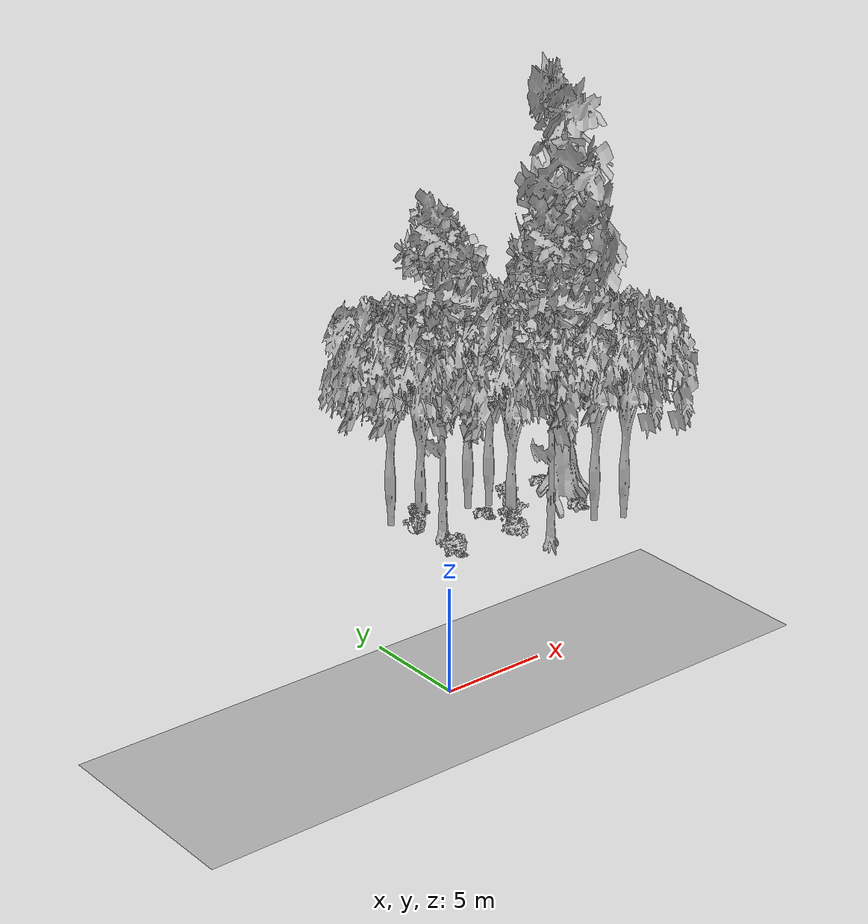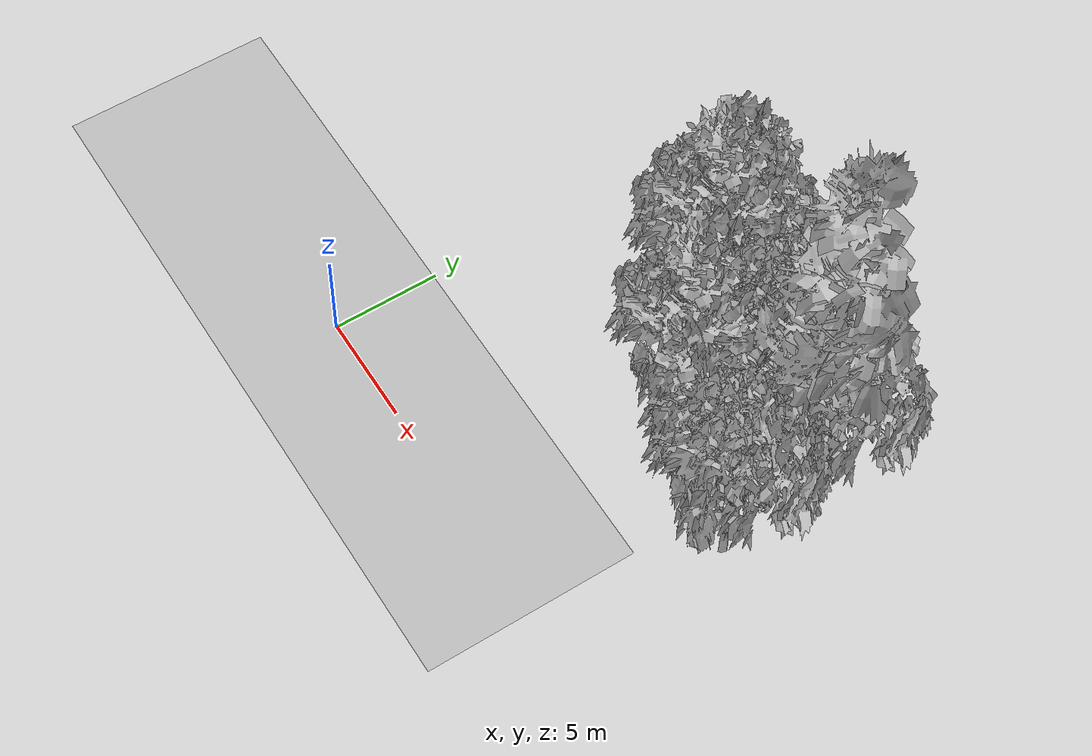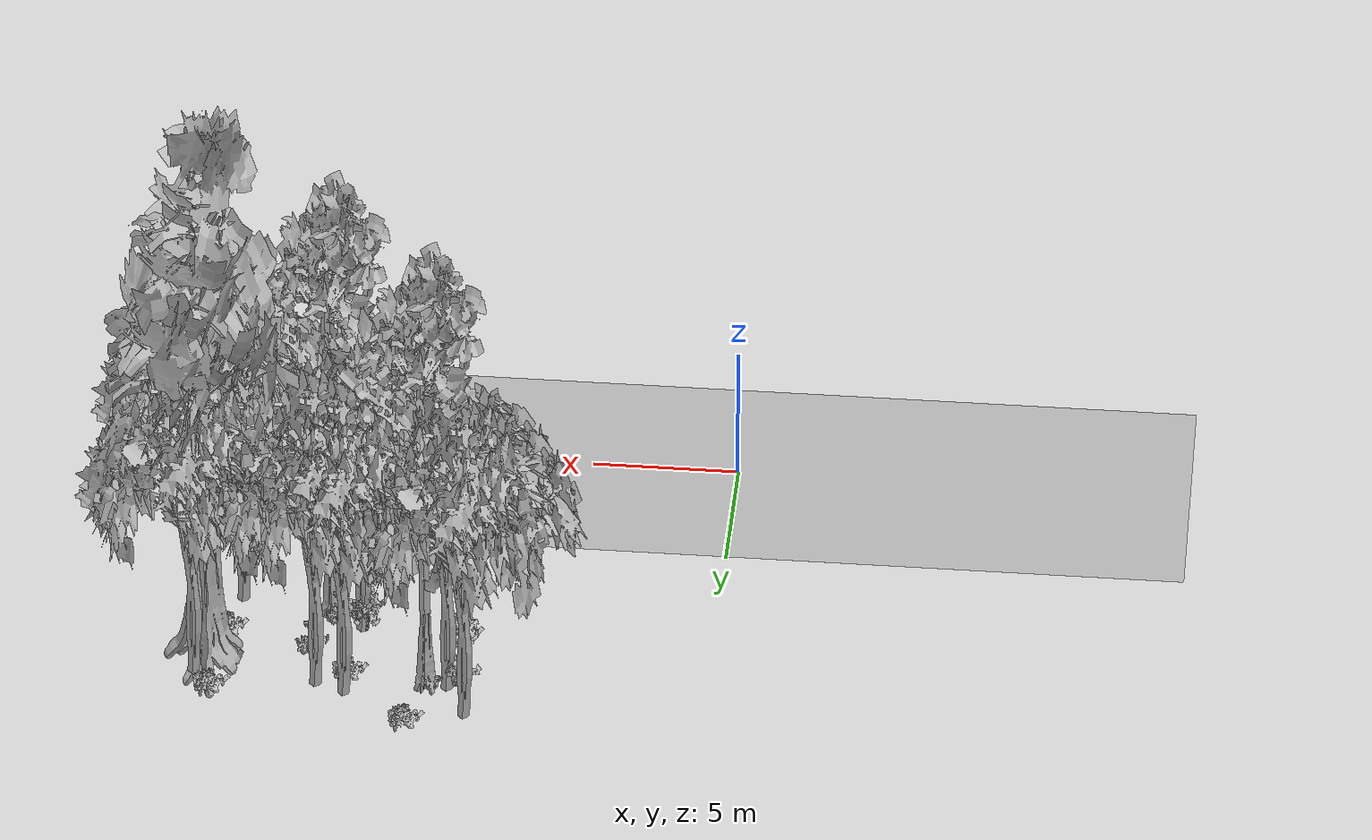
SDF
<sdf version="1.7">
 <world name="default">
  <model name="ground_plane">
   <static>1</static>
   <link name="link">
    <collision name="collision">
     <geometry><plane><normal>0 0 1</normal><size>100 100</size></plane></geometry>
     <surface><contact><ode><min_depth>0.01</min_depth><max_vel>0</max_vel></ode></contact></surface>
    </collision>
    <visual name="grass">
     <cast_shadows>0</cast_shadows>
     <geometry>
      <mesh>
       <scale>0.5814285714285714 0.18142857142857144 0.1</scale>
       <uri>file://grass_plane/meshes/grass_plane.dae</uri>
      </mesh>
     </geometry>
    </visual>
   </link>
  </model>
  <model name="Tree 53">
   <static>1</static>
   <pose>8.595025541905379 13.079518495832978 0 1.57079 -0 0</pose>
   <link name="link">
    <collision name="collision">
     <geometry><mesh><scale>3.5 5 3.5</scale><uri>model://tree_2/meshes/tree_2.obj</uri></mesh></geometry>
    </collision>
    <visual name="visual">
     <geometry><mesh><scale>3.5 5 3.5</scale><uri>model://tree_2/meshes/tree_2.obj</uri></mesh></geometry>
    </visual>
   </link>
  </model>
  <model name="Tree 113">
   <static>1</static>
   <pose>9.496349784259941 12.391039289966233 0 1.57079 -0 0</pose>
   <link name="link">
    <collision name="collision">
     <geometry><mesh><scale>3.5 5 3.5</scale><uri>model://tree_9/meshes/tree_9.obj</uri></mesh></geometry>
    </collision>
    <visual name="visual">
     <geometry><mesh><scale>3.5 5 3.5</scale><uri>model://tree_9/meshes/tree_9.obj</uri></mesh></geometry>
    </visual>
   </link>
  </model>
  <model name="Tree 144">
   <static>1</static>
   <pose>17.354970323330306 8.047245632181301 0 1.57079 -0 0</pose>
   <link name="link">
    <collision name="collision">
     <geometry><mesh><scale>3.5 5 3.5</scale><uri>model://tree_2/meshes/tree_2.obj</uri></mesh></geometry>
    </collision>
    <visual name="visual">
     <geometry><mesh><scale>3.5 5 3.5</scale><uri>model://tree_2/meshes/tree_2.obj</uri></mesh></geometry>
    </visual>
   </link>
  </model>
  <model name="Tree 198">
   <static>1</static>
   <pose>11.805888345264279 10.06929105194991 0 1.57079 -0 0</pose>
   <link name="link">
    <collision name="collision">
     <geometry><mesh><scale>3.5 5 3.5</scale><uri>model://tree_2/meshes/tree_2.obj</uri></mesh></geometry>
    </collision>
    <visual name="visual">
     <geometry><mesh><scale>3.5 5 3.5</scale><uri>model://tree_2/meshes/tree_2.obj</uri></mesh></geometry>
    </visual>
   </link>
  </model>
  <model name="Tree 245">
   <static>1</static>
   <pose>13.029096220516017 13.2430876245941 0 1.57079 -0 0</pose>
   <link name="link">
    <collision name="collision">
     <geometry><mesh><scale>3.5 5 3.5</scale><uri>model://tree_2/meshes/tree_2.obj</uri></mesh></geometry>
    </collision>
    <visual name="visual">
     <geometry><mesh><scale>3.5 5 3.5</scale><uri>model://tree_2/meshes/tree_2.obj</uri></mesh></geometry>
    </visual>
   </link>
  </model>
  <model name="Tree 272">
   <static>1</static>
   <pose>7.8766235215917035 14.536018822740811 0 1.57079 -0 0</pose>
   <link name="link">
    <collision name="collision">
     <geometry><mesh><scale>3.5 5 3.5</scale><uri>model://tree_2/meshes/tree_2.obj</uri></mesh></geometry>
    </collision>
    <visual name="visual">
     <geometry><mesh><scale>3.5 5 3.5</scale><uri>model://tree_2/meshes/tree_2.obj</uri></mesh></geometry>
    </visual>
   </link>
  </model>
  <model name="Tree 282">
   <static>1</static>
   <pose>13.134511835190942 8.561464812925795 0 1.57079 -0 0</pose>
   <link name="link">
    <collision name="collision">
     <geometry><mesh><scale>3.5 5 3.5</scale><uri>model://tree_9/meshes/tree_9.obj</uri></mesh></geometry>
    </collision>
    <visual name="visual">
     <geometry><mesh><scale>3.5 5 3.5</scale><uri>model://tree_9/meshes/tree_9.obj</uri></mesh></geometry>
    </visual>
   </link>
  </model>
  <model name="Tree 318">
   <static>1</static>
   <pose>16.040996294014562 8.748201689490742 0 1.57079 -0 0</pose>
   <link name="link">
    <collision name="collision">
     <geometry><mesh><scale>3.5 5 3.5</scale><uri>model://tree_2/meshes/tree_2.obj</uri></mesh></geometry>
    </collision>
    <visual name="visual">
     <geometry><mesh><scale>3.5 5 3.5</scale><uri>model://tree_2/meshes/tree_2.obj</uri></mesh></geometry>
    </visual>
   </link>
  </model>
  <model name="Tree 336">
   <static>1</static>
   <pose>17.201482078099474 12.898144349869227 0 1.57079 -0 0</pose>
   <link name="link">
    <collision name="collision">
     <geometry><mesh><scale>3.5 5 3.5</scale><uri>model://tree_2/meshes/tree_2.obj</uri></mesh></geometry>
    </collision>
    <visual name="visual">
     <geometry><mesh><scale>3.5 5 3.5</scale><uri>model://tree_2/meshes/tree_2.obj</uri></mesh></geometry>
    </visual>
   </link>
  </model>
  <model name="Tree 344">
   <static>1</static>
   <pose>16.89100758595474 12.102848781996588 0 1.57079 -0 0</pose>
   <link name="link">
    <collision name="collision">
     <geometry><mesh><scale>3.5 5 3.5</scale><uri>model://tree_4/meshes/tree_4.obj</uri></mesh></geometry>
    </collision>
    <visual name="visual">
     <geometry><mesh><scale>3.5 5 3.5</scale><uri>model://tree_4/meshes/tree_4.obj</uri></mesh></geometry>
    </visual>
   </link>
  </model>
  <model name="Tree 418">
   <static>1</static>
   <pose>12.024545536957952 13.655350917504425 0 1.57079 -0 0</pose>
   <link name="link">
    <collision name="collision">
     <geometry><mesh><scale>3.5 5 3.5</scale><uri>model://tree_2/meshes/tree_2.obj</uri></mesh></geometry>
    </collision>
    <visual name="visual">
     <geometry><mesh><scale>3.5 5 3.5</scale><uri>model://tree_2/meshes/tree_2.obj</uri></mesh></geometry>
    </visual>
   </link>
  </model>
  <model name="Bush 0">
   <static>1</static>
   <pose>12.098581009414232 12.410242990331763 0 1.57079 -0 0</pose>
   <link name="link">
    <collision name="collision">
     <geometry><mesh><scale>2 2 2</scale><uri>model://bush_2/meshes/bush_2.obj</uri></mesh></geometry>
     <surface><contact><collide_without_contact>false</collide_without_contact></contact></surface>
    </collision>
    <visual name="visual">
     <geometry><mesh><scale>2 2 2</scale><uri>model://bush_2/meshes/bush_2.obj</uri></mesh></geometry>
    </visual>
   </link>
  </model>
  <model name="Bush 6">
   <static>1</static>
   <pose>9.929873601110103 14.869229572256124 0 1.57079 -0 0</pose>
   <link name="link">
    <collision name="collision">
     <geometry><mesh><scale>2 2 2</scale><uri>model://bush_2/meshes/bush_2.obj</uri></mesh></geometry>
     <surface><contact><collide_without_contact>false</collide_without_contact></contact></surface>
    </collision>
    <visual name="visual">
     <geometry><mesh><scale>2 2 2</scale><uri>model://bush_2/meshes/bush_2.obj</uri></mesh></geometry>
    </visual>
   </link>
  </model>
  <model name="Bush 10">
   <static>1</static>
   <pose>13.372853076793746 12.366260176402097 0 1.57079 -0 0</pose>
   <link name="link">
    <collision name="collision">
     <geometry><mesh><scale>2 2 2</scale><uri>model://bush_5/meshes/bush_5.obj</uri></mesh></geometry>
     <surface><contact><collide_without_contact>false</collide_without_contact></contact></surface>
    </collision>
    <visual name="visual">
     <geometry><mesh><scale>2 2 2</scale><uri>model://bush_5/meshes/bush_5.obj</uri></mesh></geometry>
    </visual>
   </link>
  </model>
  <model name="Bush 100">
   <static>1</static>
   <pose>11.760578792982628 10.225310430619832 0 1.57079 -0 0</pose>
   <link name="link">
    <collision name="collision">
     <geometry><mesh><scale>2 2 2</scale><uri>model://bush_5/meshes/bush_5.obj</uri></mesh></geometry>
     <surface><contact><collide_without_contact>false</collide_without_contact></contact></surface>
    </collision>
    <visual name="visual">
     <geometry><mesh><scale>2 2 2</scale><uri>model://bush_5/meshes/bush_5.obj</uri></mesh></geometry>
    </visual>
   </link>
  </model>
  <model name="Bush 104">
   <static>1</static>
   <pose>8.432473728952672 10.073455978917838 0 1.57079 -0 0</pose>
   <link name="link">
    <collision name="collision">
     <geometry><mesh><scale>2 2 2</scale><uri>model://bush_2/meshes/bush_2.obj</uri></mesh></geometry>
     <surface><contact><collide_without_contact>false</collide_without_contact></contact></surface>
    </collision>
    <visual name="visual">
     <geometry><mesh><scale>2 2 2</scale><uri>model://bush_2/meshes/bush_2.obj</uri></mesh></geometry>
    </visual>
   </link>
  </model>
  <model name="Bush 130">
   <static>1</static>
   <pose>12.008568770364626 9.739106249201647 0 1.57079 -0 0</pose>
   <link name="link">
    <collision name="collision">
     <geometry><mesh><scale>2 2 2</scale><uri>model://bush_3/meshes/bush_3.obj</uri></mesh></geometry>
     <surface><contact><collide_without_contact>false</collide_without_contact></contact></surface>
    </collision>
    <visual name="visual">
     <geometry><mesh><scale>2 2 2</scale><uri>model://bush_3/meshes/bush_3.obj</uri></mesh></geometry>
    </visual>
   </link>
  </model>
  <model name="Bush 146">
   <static>1</static>
   <pose>12.579570605729671 10.624114340756712 0 1.57079 -0 0</pose>
   <link name="link">
    <collision name="collision">
     <geometry><mesh><scale>2 2 2</scale><uri>model://bush_5/meshes/bush_5.obj</uri></mesh></geometry>
     <surface><contact><collide_without_contact>false</collide_without_contact></contact></surface>
    </collision>
    <visual name="visual">
     <geometry><mesh><scale>2 2 2</scale><uri>model://bush_5/meshes/bush_5.obj</uri></mesh></geometry>
    </visual>
   </link>
  </model>
  <model name="Bush 226">
   <static>1</static>
   <pose>8.328053126385392 12.92741185381956 0 1.57079 -0 0</pose>
   <link name="link">
    <collision name="collision">
     <geometry><mesh><scale>2 2 2</scale><uri>model://bush_4/meshes/bush_4.obj</uri></mesh></geometry>
     <surface><contact><collide_without_contact>false</collide_without_contact></contact></surface>
    </collision>
    <visual name="visual">
     <geometry><mesh><scale>2 2 2</scale><uri>model://bush_4/meshes/bush_4.obj</uri></mesh></geometry>
    </visual>
   </link>
  </model>
  <model name="Bush 263">
   <static>1</static>
   <pose>8.598376407455326 10.289040443748924 0 1.57079 -0 0</pose>
   <link name="link">
    <collision name="collision">
     <geometry><mesh><scale>2 2 2</scale><uri>model://bush_3/meshes/bush_3.obj</uri></mesh></geometry>
     <surface><contact><collide_without_contact>false</collide_without_contact></contact></surface>
    </collision>
    <visual name="visual">
     <geometry><mesh><scale>2 2 2</scale><uri>model://bush_3/meshes/bush_3.obj</uri></mesh></geometry>
    </visual>
   </link>
  </model>
  <model name="Bush 294">
   <static>1</static>
   <pose>16.681256694421023 13.53379006230665 0 1.57079 -0 0</pose>
   <link name="link">
    <collision name="collision">
     <geometry><mesh><scale>2 2 2</scale><uri>model://bush_2/meshes/bush_2.obj</uri></mesh></geometry>
     <surface><contact><collide_without_contact>false</collide_without_contact></contact></surface>
    </collision>
    <visual name="visual">
     <geometry><mesh><scale>2 2 2</scale><uri>model://bush_2/meshes/bush_2.obj</uri></mesh></geometry>
    </visual>
   </link>
  </model>
  <model name="Bush 295">
   <static>1</static>
   <pose>16.43487084605995 10.316816251085744 0 1.57079 -0 0</pose>
   <link name="link">
    <collision name="collision">
     <geometry><mesh><scale>2 2 2</scale><uri>model://bush_2/meshes/bush_2.obj</uri></mesh></geometry>
     <surface><contact><collide_without_contact>false</collide_without_contact></contact></surface>
    </collision>
    <visual name="visual">
     <geometry><mesh><scale>2 2 2</scale><uri>model://bush_2/meshes/bush_2.obj</uri></mesh></geometry>
    </visual>
   </link>
  </model>
 </world>
</sdf>
